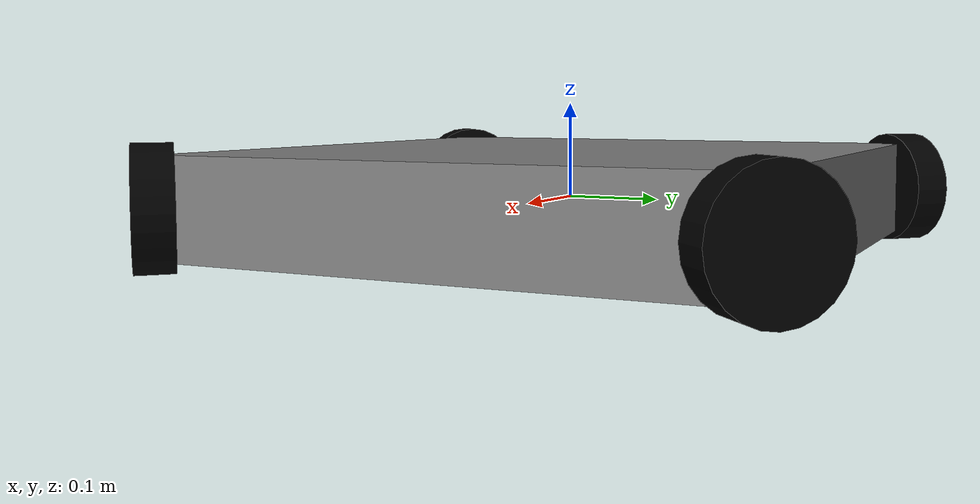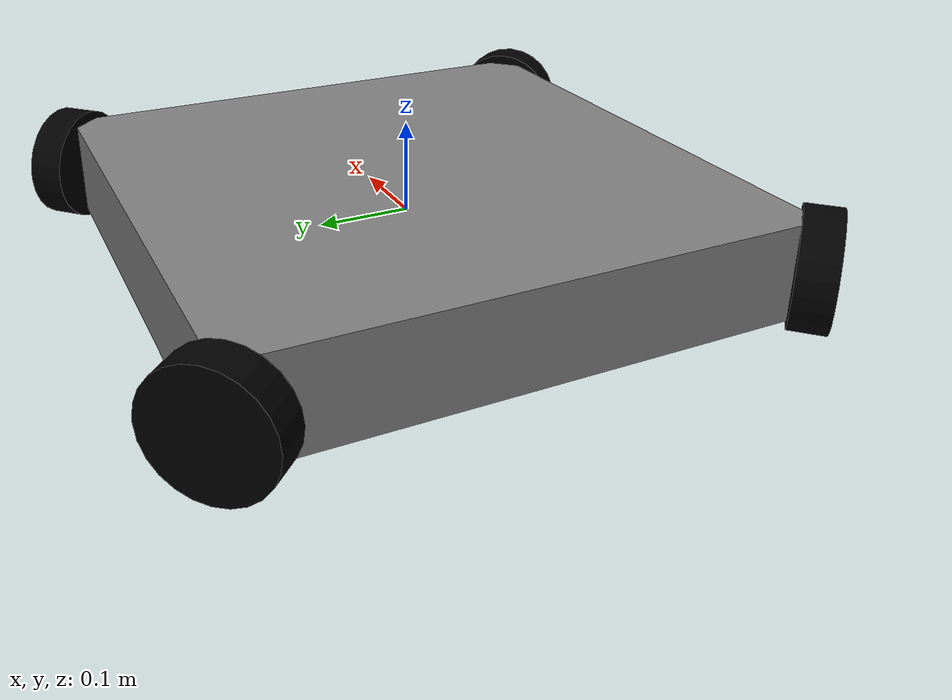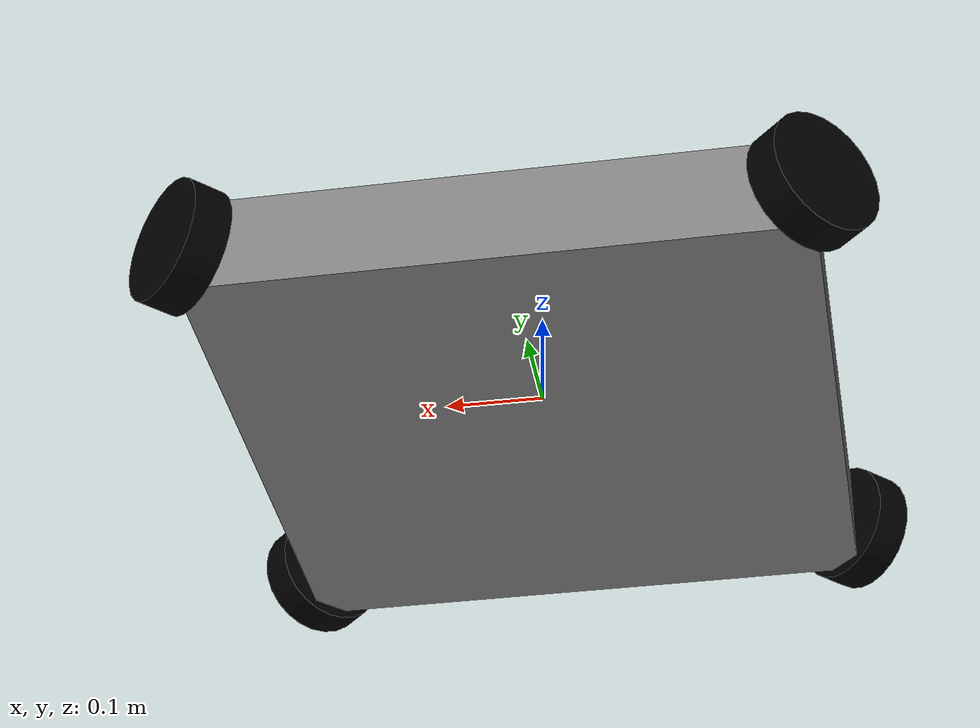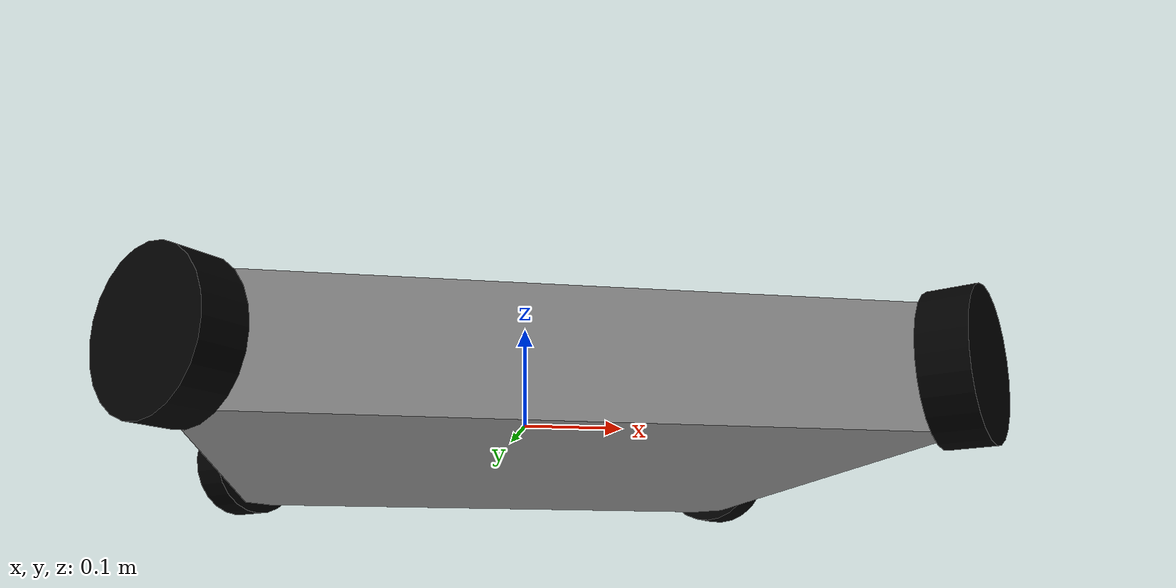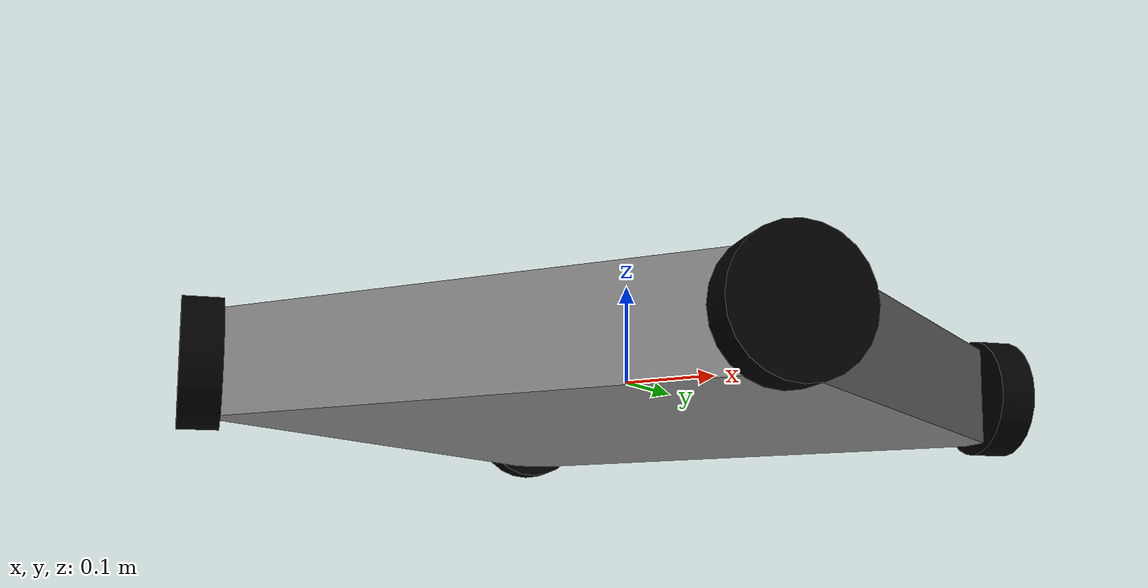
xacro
<?xml version="1.0"?>
<robot name="dodo_robot">

  <material name="white">
      <color rgba="1 1 1 1" />
  </material>

  <material name="grey">
      <color rgba="0.5 0.5 0.5 1" />
  </material>

  <material name="black">
      <color rgba="0 0 0 1" />
  </material>

  <link name="base_link">
    <collision>
        <geometry>
          <box size="0.6 0.6 0.1033252"/>
        </geometry>
      <material name="balck"/>
    </collision>
    <inertial>
      <mass value="10"/>
      <inertia ixx="0.01" iyy="0.01" izz="0.01" ixy="0" ixz="0" iyz="0"/>
    </inertial>
    <visual>
      <geometry>
        <box size=" 0.6 0.6 0.1033252"/>
      </geometry>
      <material name="grey"/>
    </visual>
  </link>

    <link name="right_front_wheel">
    <collision>
        <geometry>
          <cylinder length="0.039" radius="0.065"/>
        </geometry>
        <origin rpy="0 1.5708 0" xyz="0 0 0"/>
      <material name="balck"/>
    </collision>
    <inertial>
      <mass value="1"/>
      <inertia ixx="0.001" iyy="0.001" izz="0.001" ixy="0" ixz="0" iyz="0"/>
    </inertial>
    <visual>
      <geometry>
        <cylinder length="0.039" radius="0.0635"/>
      </geometry>
      <material name="black"/>
      <origin rpy="0 1.5708 0" xyz="0 0 0"/>
    </visual>
  </link>

  <joint name="base_to_right_front_wheel" type="continuous">
    <parent link="base_link"/>
    <child link="right_front_wheel"/>
    <origin rpy="0 0 0.785398" xyz="0.3 0.3  0"/>
  </joint>

  <link name="left_front_wheel">
    <collision>
        <geometry>
          <cylinder length="0.039" radius="0.0635"/>
        </geometry>
        <origin rpy="0 1.5708 0" xyz="0 0 0"/>
      <material name="balck"/>
    </collision>
    <inertial>
      <mass value="1"/>
      <inertia ixx="0.001" iyy="0.001" izz="0.001" ixy="0" ixz="0" iyz="0"/>
    </inertial>
    <visual>
      <geometry>
        <cylinder length="0.039" radius="0.0635"/>
      </geometry>
      <material name="black"/>
      <origin rpy="0 1.5708 0" xyz="0 0 0"/>
    </visual>
  </link>

  <joint name="base_to_left_front_wheel" type="continuous">
    <parent link="base_link"/>
    <child link="left_front_wheel"/>
    <origin rpy="0 0 2.35619" xyz="-0.3 0.3  0"/>
  </joint>

  <link name="left_back_wheel">
    <collision>
        <geometry>
          <cylinder length="0.039" radius="0.0635"/>
        </geometry>
      <material name="balck"/>
    </collision>
    <inertial>
      <mass value="1"/>
      <inertia ixx="0.001" iyy="0.001" izz="0.001" ixy="0" ixz="0" iyz="0"/>
    </inertial>
    <visual>
      <geometry>
        <cylinder length="0.039" radius="0.0635"/>
      </geometry>
      <material name="black"/>
      <origin rpy="0 1.5708 0" xyz="0 0 0"/>
    </visual>
  </link>

  <joint name="base_to_left_back_wheel" type="continuous">
    <parent link="base_link"/>
    <child link="left_back_wheel"/>
    <origin rpy="0 0 0.785398" xyz="-0.3 -0.3  0"/>
  </joint>

  <link name="right_back_wheel">
    <collision>
        <geometry>
          <cylinder length="0.039" radius="0.0635"/>
        </geometry>
        <origin rpy="0 1.5708 0" xyz="0 0 0"/>
      <material name="balck"/>
    </collision>
    <inertial>
      <mass value="1"/>
      <inertia ixx="0.001" iyy="0.001" izz="0.001" ixy="0" ixz="0" iyz="0"/>
    </inertial>
    <visual>
      <geometry>
        <cylinder length="0.039" radius="0.0635"/>
      </geometry>
      <material name="black"/>
      <origin rpy="0 1.5708 0" xyz="0 0 0"/>
    </visual>
  </link>

  <joint name="base_to_right_back_wheel" type="continuous">
    <parent link="base_link"/>
    <child link="right_back_wheel"/>
    <origin rpy="0 0 2.35619" xyz="0.3 -0.3  0"/>
  </joint>
  <gazebo>
        <plugin name="omni_steering" filename="libgazebo_ros_planar_move.so">
            <commandTopic>cmd_vel</commandTopic>
            <odometryTopic>odom</odometryTopic>
            <odometryFrame>odom</odometryFrame>
            <odometryRate>50.0</odometryRate>
            <robotBaseFrame>base_link</robotBaseFrame>
            <publishTF>false</publishTF>
        </plugin>
    </gazebo>

</robot>
